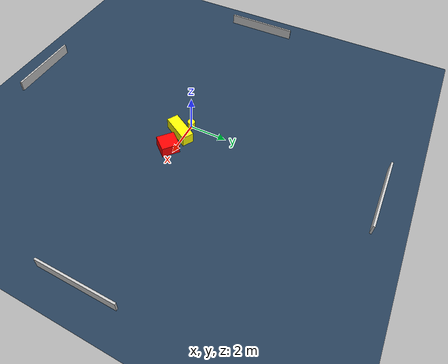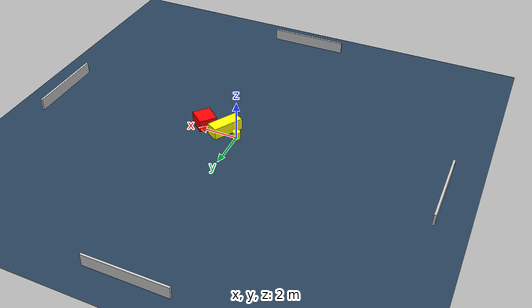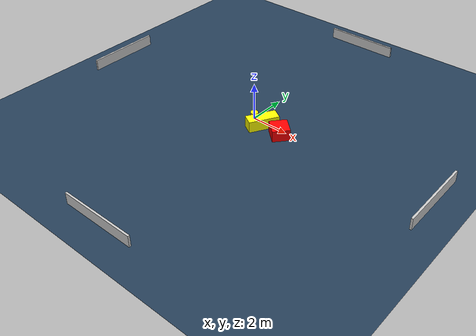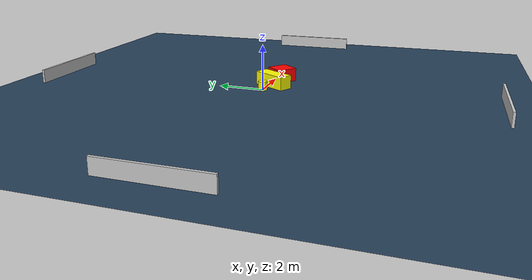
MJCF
<?xml version="1.0" ?>
<mujoco model="generated_environment">
  <option timestep="0.01" integrator="RK4" cone="elliptic"/>
  <default>
    <geom density="1"/>
  </default>
  <asset>
    <texture builtin="gradient" height="3072" name="skybox" rgb1="0.3 0.5 0.7" rgb2="0 0 0" type="skybox" width="512"/>
    <texture builtin="checker" height="300" name="groundplane" rgb1="0.2 0.3 0.4" rgb2="0.1 0.2 0.3" type="2d" width="300"/>
    <material name="groundplane" reflectance="0.2" texrepeat="5 5" texture="groundplane"/>
  </asset>
  <worldbody>
    <light dir="0 0 -1" directional="true" pos="0 0 1.5"/>
    <geom condim="3" friction="0.5 0.005 0.001" material="groundplane" name="floor" pos="0 0 0" size="0 0 0.05" type="plane"/>
    <body name="walls">
      <geom name="wall_1" condim="4" pos="-10.0 0.0 0.3" rgba="0.800000011920929 0.800000011920929 0.800000011920929 1.0" size="0.05 2.0 0.3" type="box"/>
      <geom name="wall_2" condim="4" pos="10.0 0.0 0.3" rgba="0.800000011920929 0.800000011920929 0.800000011920929 1.0" size="0.05 2.0 0.3" type="box"/>
      <geom name="wall_3" condim="4" pos="0.0 -10.0 0.3" rgba="0.800000011920929 0.800000011920929 0.800000011920929 1.0" size="2.0 0.05 0.3" type="box"/>
      <geom name="wall_4" condim="4" pos="0.0 10.0 0.3" rgba="0.800000011920929 0.800000011920929 0.800000011920929 1.0" size="2.0 0.05 0.3" type="box"/>
    </body>
    <body name="robot">
      <joint name="joint_x" type="slide" pos="0 0 0" axis="1 0 0"/>
      <joint name="joint_y" type="slide" pos="0 0 0" axis="0 1 0"/>
      <geom name="robot" type="cylinder" pos="0.0 0.0 0.2" size="0.2 0.2 0.0" mass="5.0" friction="1.0 0.005 0.0001" condim="4" rgba="1.0 1.0 0.0 1.0"/>
    </body>
    <body name="obstacle_1_movable">
      <geom name="obstacle_1_movable" condim="4" pos="0.7365674426969987 -0.27035577968262686 0.3" euler="0 0 149.80404461273588" friction="0.0 0.005 0.001" rgba="1.0 1.0 0.0 1.0" size="0.3130847014899235 0.796831230140659 0.3" type="box" mass="0.1"/>
      <joint type="free"/>
    </body>
    <body name="obstacle_2_static">
      <geom name="obstacle_2_static" condim="4" pos="1.8890851176050107 -0.3423658284459834 0.3" euler="0 0 229.1338269106936" friction="0.0 0.005 0.001" rgba="1.0 0.0 0.0 1.0" size="0.45059756722713834 0.47129372276505466 0.3" type="box"/>
    </body>
  </worldbody>
  <actuator>
    <motor name="actuator_x" joint="joint_x" gear="1" ctrlrange="-1 1"/>
    <motor name="actuator_y" joint="joint_y" gear="1" ctrlrange="-1 1"/>
  </actuator>
</mujoco>
